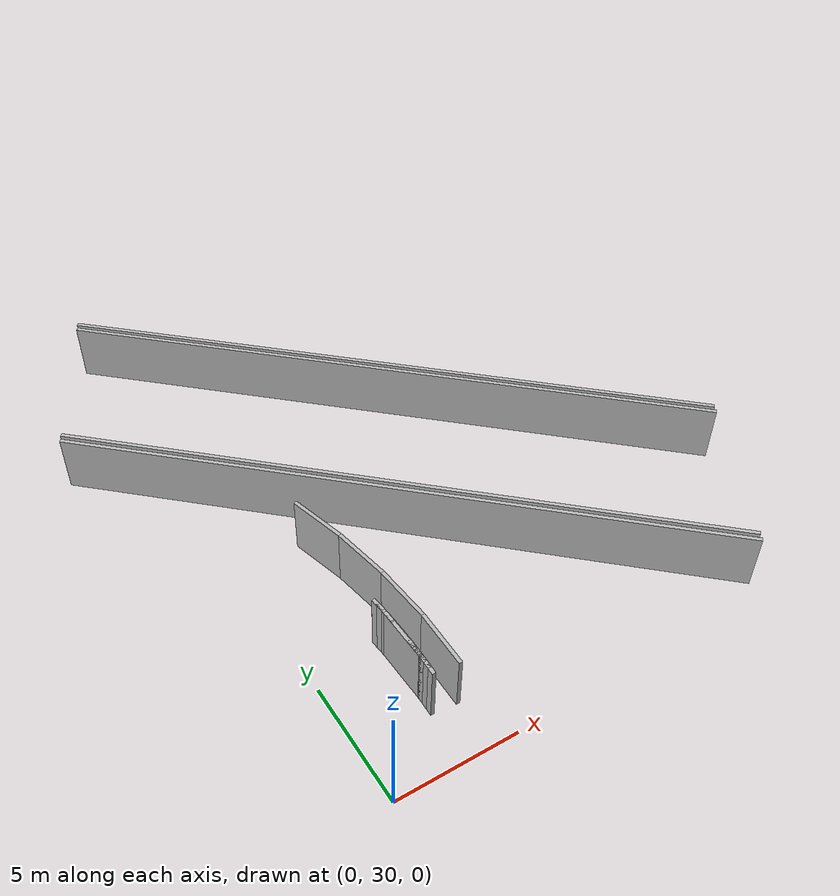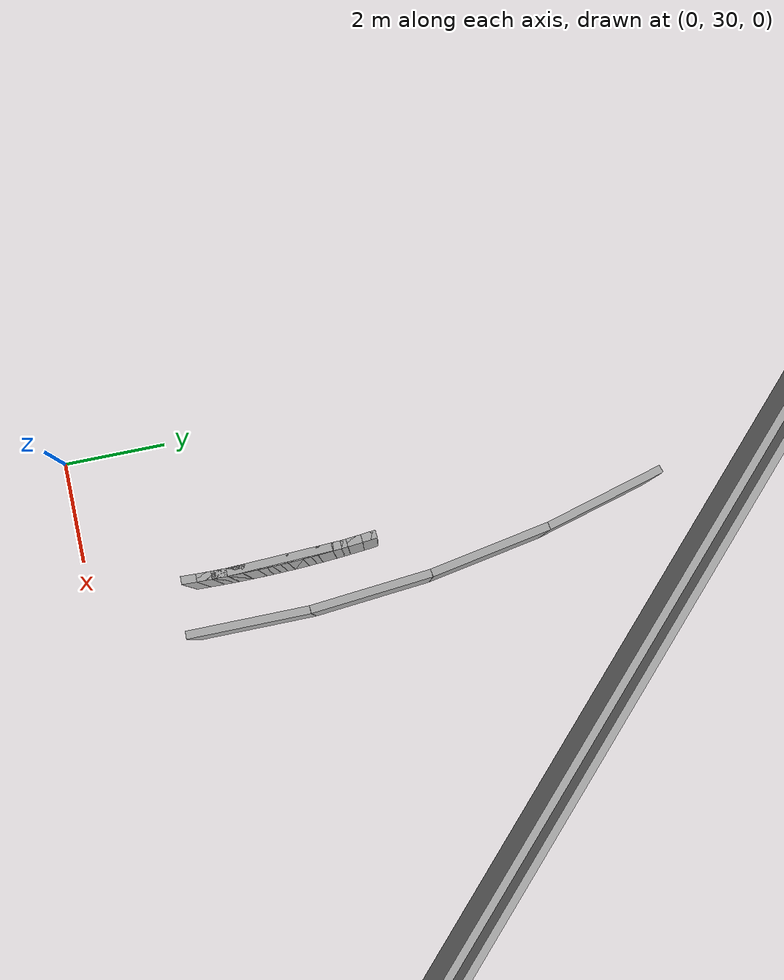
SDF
<sdf version="1.6">
 <model name="sps_2404">
  <static>1</static>
  <allow_auto_disable>0</allow_auto_disable>
  <link name="Wall558">
   <collision name="collision"><geometry><box><size>26.8011 0.15 2.5</size></box></geometry></collision>
   <visual name="visual">
    <geometry><box><size>26.8011 0.15 2.5</size></box></geometry>
    <transparency>0.0</transparency>
   </visual>
   <pose>9.24554 45.6146 1.25 0 -0 2.40377</pose>
  </link>
  <link name="Wall1168">
   <collision name="collision"><geometry><box><size>26.7999 0.15 2.5</size></box></geometry></collision>
   <visual name="visual">
    <geometry><box><size>26.7999 0.15 2.5</size></box></geometry>
    <transparency>0.0</transparency>
   </visual>
   <pose>9.38766 45.8899 1.25 0 0 -0.737837</pose>
  </link>
  <link name="Wall1457">
   <collision name="collision"><geometry><box><size>26.7988 0.15 2.5</size></box></geometry></collision>
   <visual name="visual">
    <geometry><box><size>26.7988 0.15 2.5</size></box></geometry>
    <transparency>0.0</transparency>
   </visual>
   <pose>6.20837 39.7252 1.25 0 -0 2.40375</pose>
  </link>
  <link name="Wall1773">
   <collision name="collision"><geometry><box><size>26.7999 0.15 2.5</size></box></geometry></collision>
   <visual name="visual">
    <geometry><box><size>26.7999 0.15 2.5</size></box></geometry>
    <transparency>0.0</transparency>
   </visual>
   <pose>6.35107 40.0013 1.25 0 -0 2.40376</pose>
  </link>
  <link name="Wall7752">
   <collision name="collision"><geometry><box><size>0.282463 0.15 2.5</size></box></geometry></collision>
   <visual name="visual">
    <geometry><box><size>0.282463 0.15 2.5</size></box></geometry>
    <transparency>0.0</transparency>
   </visual>
   <pose>2.74227 35.6395 1.25 0 0 -1.46298</pose>
  </link>
  <link name="Wall7753">
   <collision name="collision"><geometry><box><size>0.282339 0.15 2.5</size></box></geometry></collision>
   <visual name="visual">
    <geometry><box><size>0.282339 0.15 2.5</size></box></geometry>
    <transparency>0.0</transparency>
   </visual>
   <pose>2.77117 35.3586 1.25 0 0 -1.47358</pose>
  </link>
  <link name="Wall7754">
   <collision name="collision"><geometry><box><size>0.282408 0.15 2.5</size></box></geometry></collision>
   <visual name="visual">
    <geometry><box><size>0.282408 0.15 2.5</size></box></geometry>
    <transparency>0.0</transparency>
   </visual>
   <pose>2.79696 35.0774 1.25 0 0 -1.48511</pose>
  </link>
  <link name="Wall7755">
   <collision name="collision"><geometry><box><size>0.282384 0.15 2.5</size></box></geometry></collision>
   <visual name="visual">
    <geometry><box><size>0.282384 0.15 2.5</size></box></geometry>
    <transparency>0.0</transparency>
   </visual>
   <pose>2.81945 34.7959 1.25 0 0 -1.49702</pose>
  </link>
  <link name="Wall7756">
   <collision name="collision"><geometry><box><size>0.282362 0.15 2.5</size></box></geometry></collision>
   <visual name="visual">
    <geometry><box><size>0.282362 0.15 2.5</size></box></geometry>
    <transparency>0.0</transparency>
   </visual>
   <pose>2.83877 34.5142 1.25 0 0 -1.50764</pose>
  </link>
  <link name="Wall7757">
   <collision name="collision"><geometry><box><size>0.282359 0.15 2.5</size></box></geometry></collision>
   <visual name="visual">
    <geometry><box><size>0.282359 0.15 2.5</size></box></geometry>
    <transparency>0.0</transparency>
   </visual>
   <pose>2.85497 34.2323 1.25 0 0 -1.51911</pose>
  </link>
  <link name="Wall7758">
   <collision name="collision"><geometry><box><size>0.282457 0.15 2.5</size></box></geometry></collision>
   <visual name="visual">
    <geometry><box><size>0.282457 0.15 2.5</size></box></geometry>
    <transparency>0.0</transparency>
   </visual>
   <pose>2.86797 33.9502 1.25 0 0 -1.53038</pose>
  </link>
  <link name="Wall7759">
   <collision name="collision"><geometry><box><size>0.28235 0.15 2.5</size></box></geometry></collision>
   <visual name="visual">
    <geometry><box><size>0.28235 0.15 2.5</size></box></geometry>
    <transparency>0.0</transparency>
   </visual>
   <pose>2.87786 33.668 1.25 0 0 -1.54118</pose>
  </link>
  <link name="Wall7760">
   <collision name="collision"><geometry><box><size>0.28239 0.15 2.5</size></box></geometry></collision>
   <visual name="visual">
    <geometry><box><size>0.28239 0.15 2.5</size></box></geometry>
    <transparency>0.0</transparency>
   </visual>
   <pose>2.88445 33.3857 1.25 0 0 -1.55372</pose>
  </link>
  <link name="Wall7761">
   <collision name="collision"><geometry><box><size>0.282415 0.15 2.5</size></box></geometry></collision>
   <visual name="visual">
    <geometry><box><size>0.282415 0.15 2.5</size></box></geometry>
    <transparency>0.0</transparency>
   </visual>
   <pose>2.88775 33.1033 1.25 0 0 -1.56453</pose>
  </link>
  <link name="Wall7762">
   <collision name="collision"><geometry><box><size>0.28223 0.15 2.5</size></box></geometry></collision>
   <visual name="visual">
    <geometry><box><size>0.28223 0.15 2.5</size></box></geometry>
    <transparency>0.0</transparency>
   </visual>
   <pose>2.88793 32.821 1.25 0 0 -1.57577</pose>
  </link>
  <link name="Wall7763">
   <collision name="collision"><geometry><box><size>0.282447 0.15 2.5</size></box></geometry></collision>
   <visual name="visual">
    <geometry><box><size>0.282447 0.15 2.5</size></box></geometry>
    <transparency>0.0</transparency>
   </visual>
   <pose>2.88494 32.5387 1.25 0 0 -1.587</pose>
  </link>
  <link name="Wall13108">
   <collision name="collision"><geometry><box><size>26.7999 0.15 2.5</size></box></geometry></collision>
   <visual name="visual">
    <geometry><box><size>26.7999 0.15 2.5</size></box></geometry>
    <transparency>0.0</transparency>
   </visual>
   <pose>6.35107 40.0013 1.25 0 -0 2.40376</pose>
  </link>
  <link name="Wall16891">
   <collision name="collision"><geometry><box><size>2.31546 0.15 2.5</size></box></geometry></collision>
   <visual name="visual">
    <geometry><box><size>2.31546 0.15 2.5</size></box></geometry>
    <transparency>0.0</transparency>
   </visual>
   <pose>3.86187 33.1734 1.25 0 -0 1.57979</pose>
  </link>
  <link name="Wall16892">
   <collision name="collision"><geometry><box><size>2.31532 0.15 2.5</size></box></geometry></collision>
   <visual name="visual">
    <geometry><box><size>2.31532 0.15 2.5</size></box></geometry>
    <transparency>0.0</transparency>
   </visual>
   <pose>3.73815 35.4832 1.25 0 -0 1.66883</pose>
  </link>
  <link name="Wall16893">
   <collision name="collision"><geometry><box><size>2.31545 0.15 2.5</size></box></geometry></collision>
   <visual name="visual">
    <geometry><box><size>2.31545 0.15 2.5</size></box></geometry>
    <transparency>0.0</transparency>
   </visual>
   <pose>3.40945 37.7728 1.25 0 -0 1.75794</pose>
  </link>
  <link name="Wall16894">
   <collision name="collision"><geometry><box><size>2.31536 0.15 2.5</size></box></geometry></collision>
   <visual name="visual">
    <geometry><box><size>2.31536 0.15 2.5</size></box></geometry>
    <transparency>0.0</transparency>
   </visual>
   <pose>2.87835 40.0241 1.25 0 -0 1.847</pose>
  </link>
  <link name="Wall32372">
   <collision name="collision"><geometry><box><size>0.282516 0.15 2.5</size></box></geometry></collision>
   <visual name="visual">
    <geometry><box><size>0.282516 0.15 2.5</size></box></geometry>
    <transparency>0.0</transparency>
   </visual>
   <pose>2.87896 32.2563 1.25 0 -0 1.54336</pose>
  </link>
  <link name="Wall32373">
   <collision name="collision"><geometry><box><size>0.282444 0.15 2.5</size></box></geometry></collision>
   <visual name="visual">
    <geometry><box><size>0.282444 0.15 2.5</size></box></geometry>
    <transparency>0.0</transparency>
   </visual>
   <pose>2.88503 32.5387 1.25 0 -0 1.55524</pose>
  </link>
  <link name="Wall32374">
   <collision name="collision"><geometry><box><size>0.28223 0.15 2.5</size></box></geometry></collision>
   <visual name="visual">
    <geometry><box><size>0.28223 0.15 2.5</size></box></geometry>
    <transparency>0.0</transparency>
   </visual>
   <pose>2.88793 32.821 1.25 0 -0 1.56582</pose>
  </link>
  <link name="Wall32375">
   <collision name="collision"><geometry><box><size>0.282415 0.15 2.5</size></box></geometry></collision>
   <visual name="visual">
    <geometry><box><size>0.282415 0.15 2.5</size></box></geometry>
    <transparency>0.0</transparency>
   </visual>
   <pose>2.88775 33.1033 1.25 0 -0 1.57706</pose>
  </link>
  <link name="Wall32376">
   <collision name="collision"><geometry><box><size>0.28239 0.15 2.5</size></box></geometry></collision>
   <visual name="visual">
    <geometry><box><size>0.28239 0.15 2.5</size></box></geometry>
    <transparency>0.0</transparency>
   </visual>
   <pose>2.88445 33.3857 1.25 0 -0 1.58787</pose>
  </link>
  <link name="Wall32377">
   <collision name="collision"><geometry><box><size>0.28235 0.15 2.5</size></box></geometry></collision>
   <visual name="visual">
    <geometry><box><size>0.28235 0.15 2.5</size></box></geometry>
    <transparency>0.0</transparency>
   </visual>
   <pose>2.87786 33.668 1.25 0 -0 1.60042</pose>
  </link>
  <link name="Wall32378">
   <collision name="collision"><geometry><box><size>0.282457 0.15 2.5</size></box></geometry></collision>
   <visual name="visual">
    <geometry><box><size>0.282457 0.15 2.5</size></box></geometry>
    <transparency>0.0</transparency>
   </visual>
   <pose>2.86797 33.9502 1.25 0 -0 1.61122</pose>
  </link>
  <link name="Wall32379">
   <collision name="collision"><geometry><box><size>0.282359 0.15 2.5</size></box></geometry></collision>
   <visual name="visual">
    <geometry><box><size>0.282359 0.15 2.5</size></box></geometry>
    <transparency>0.0</transparency>
   </visual>
   <pose>2.85497 34.2323 1.25 0 -0 1.62248</pose>
  </link>
  <link name="Wall32380">
   <collision name="collision"><geometry><box><size>0.282362 0.15 2.5</size></box></geometry></collision>
   <visual name="visual">
    <geometry><box><size>0.282362 0.15 2.5</size></box></geometry>
    <transparency>0.0</transparency>
   </visual>
   <pose>2.83877 34.5142 1.25 0 -0 1.63396</pose>
  </link>
  <link name="Wall32381">
   <collision name="collision"><geometry><box><size>0.282398 0.15 2.5</size></box></geometry></collision>
   <visual name="visual">
    <geometry><box><size>0.282398 0.15 2.5</size></box></geometry>
    <transparency>0.0</transparency>
   </visual>
   <pose>2.81936 34.7959 1.25 0 -0 1.64521</pose>
  </link>
  <link name="Wall32382">
   <collision name="collision"><geometry><box><size>0.282393 0.15 2.5</size></box></geometry></collision>
   <visual name="visual">
    <geometry><box><size>0.282393 0.15 2.5</size></box></geometry>
    <transparency>0.0</transparency>
   </visual>
   <pose>2.79687 35.0774 1.25 0 -0 1.65584</pose>
  </link>
  <link name="Wall32383">
   <collision name="collision"><geometry><box><size>0.282321 0.15 2.5</size></box></geometry></collision>
   <visual name="visual">
    <geometry><box><size>0.282321 0.15 2.5</size></box></geometry>
    <transparency>0.0</transparency>
   </visual>
   <pose>2.77126 35.3586 1.25 0 -0 1.66737</pose>
  </link>
  <link name="Wall32384">
   <collision name="collision"><geometry><box><size>0.282483 0.15 2.5</size></box></geometry></collision>
   <visual name="visual">
    <geometry><box><size>0.282483 0.15 2.5</size></box></geometry>
    <transparency>0.0</transparency>
   </visual>
   <pose>2.74236 35.6395 1.25 0 -0 1.67926</pose>
  </link>
  <link name="Wall36667">
   <collision name="collision"><geometry><box><size>2.14543 0.15 2.5</size></box></geometry></collision>
   <visual name="visual">
    <geometry><box><size>2.14543 0.15 2.5</size></box></geometry>
    <transparency>0.0</transparency>
   </visual>
   <pose>2.84188 34.0338 1.25 0 -0 1.61462</pose>
  </link>
 </model>
</sdf>
